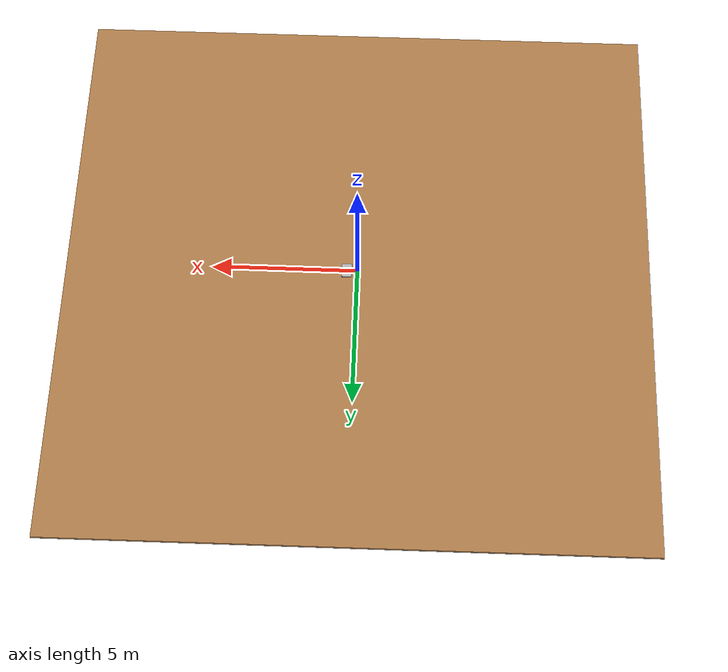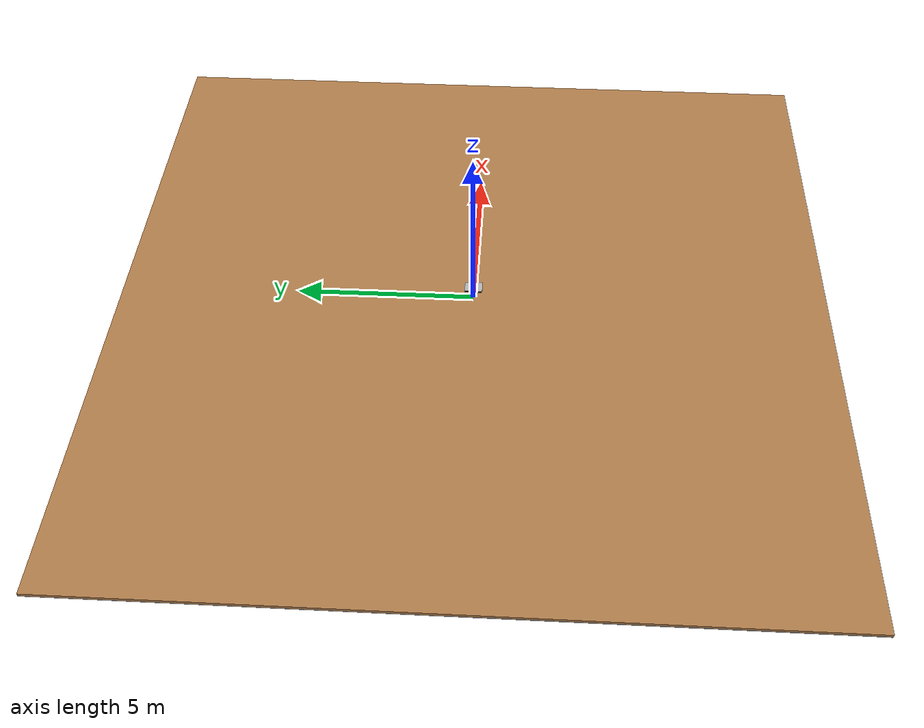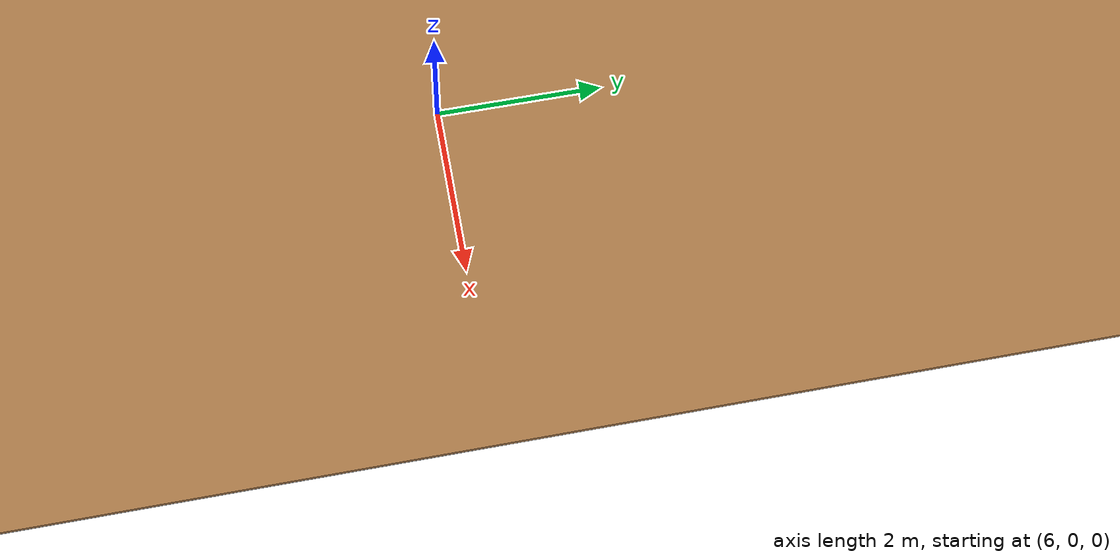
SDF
<sdf version="1.7">
 <world name="default">
  <light name="sun" type="directional">
   <pose>0 0 10 0 -0 0</pose>
   <diffuse>0.8 0.8 0.8 1</diffuse>
   <specular>0.2 0.2 0.2 1</specular>
   <attenuation>
    <range>1000</range>
    <constant>0.9</constant>
    <linear>0.01</linear>
    <quadratic>0.001</quadratic>
   </attenuation>
   <direction>-0.5 0.1 -0.9</direction>
   <spot><inner_angle>0</inner_angle><outer_angle>0</outer_angle><falloff>0</falloff></spot>
  </light>
  <gravity>0 0 -9.8</gravity>
  <magnetic_field>6e-06 2.3e-05 -4.2e-05</magnetic_field>
  <atmosphere type="adiabatic"/>
  <physics type="ode">
   <max_step_size>0.001</max_step_size>
   <real_time_factor>1</real_time_factor>
   <real_time_update_rate>1000</real_time_update_rate>
  </physics>
  <scene><ambient>0.4 0.4 0.4 1</ambient><background>0.7 0.7 0.7 1</background><shadows>1</shadows></scene>
  <spherical_coordinates>
   <surface_model>EARTH_WGS84</surface_model>
   <latitude_deg>0</latitude_deg>
   <longitude_deg>0</longitude_deg>
   <elevation>0</elevation>
   <heading_deg>0</heading_deg>
  </spherical_coordinates>
  <model name="EmptyWorldWood">
   <pose>0 0 -0.11 0 -0 0</pose>
   <link name="Floor_0">
    <collision name="Floor_0_Collision">
     <geometry><box><size>20.15 20.15 0.1</size></box></geometry>
     <pose>0 0 0.05 0 -0 0</pose>
    </collision>
    <visual name="Floor_0_Visual">
     <pose>0 0 0.05 0 -0 0</pose>
     <geometry><box><size>20.15 20.15 0.1</size></box></geometry>
     <material>
      <script><uri>file://media/materials/scripts/gazebo.material</uri><name>Gazebo/Wood</name></script>
      <ambient>1 1 1 1</ambient>
     </material>
     <meta><layer>1</layer></meta>
    </visual>
    <pose>0 0 0.01 0 -0 0</pose>
   </link>
   <link name="Wall_0">
    <collision name="Wall_0_Collision">
     <geometry><box><size>20.15 0.15 0.01</size></box></geometry>
     <pose>0 0 0.005 0 -0 0</pose>
    </collision>
    <visual name="Wall_0_Visual">
     <pose>0 0 0.005 0 -0 0</pose>
     <geometry><box><size>20.15 0.15 0.01</size></box></geometry>
     <material>
      <script><uri>file://media/materials/scripts/gazebo.material</uri><name>Gazebo/Grey</name></script>
      <ambient>1 1 1 1</ambient>
     </material>
     <meta><layer>0</layer></meta>
    </visual>
    <pose>0 10 0 0 -0 0</pose>
   </link>
   <link name="Wall_10">
    <collision name="Wall_10_Collision">
     <geometry><box><size>20.15 0.15 0.01</size></box></geometry>
     <pose>0 0 0.005 0 -0 0</pose>
    </collision>
    <visual name="Wall_10_Visual">
     <pose>0 0 0.005 0 -0 0</pose>
     <geometry><box><size>20.15 0.15 0.01</size></box></geometry>
     <material>
      <script><uri>file://media/materials/scripts/gazebo.material</uri><name>Gazebo/Grey</name></script>
      <ambient>1 1 1 1</ambient>
     </material>
     <meta><layer>1</layer></meta>
    </visual>
    <pose>0 -10 0.01 0 -0 0</pose>
   </link>
   <link name="Wall_11">
    <collision name="Wall_11_Collision">
     <geometry><box><size>20.15 0.15 0.01</size></box></geometry>
     <pose>0 0 0.005 0 -0 0</pose>
    </collision>
    <visual name="Wall_11_Visual">
     <pose>0 0 0.005 0 -0 0</pose>
     <geometry><box><size>20.15 0.15 0.01</size></box></geometry>
     <material>
      <script><uri>file://media/materials/scripts/gazebo.material</uri><name>Gazebo/Grey</name></script>
      <ambient>1 1 1 1</ambient>
     </material>
     <meta><layer>1</layer></meta>
    </visual>
    <pose>10 0 0.01 0 -0 1.5708</pose>
   </link>
   <link name="Wall_2">
    <collision name="Wall_2_Collision">
     <geometry><box><size>20.15 0.15 0.01</size></box></geometry>
     <pose>0 0 0.005 0 -0 0</pose>
    </collision>
    <visual name="Wall_2_Visual">
     <pose>0 0 0.005 0 -0 0</pose>
     <geometry><box><size>20.15 0.15 0.01</size></box></geometry>
     <material>
      <script><uri>file://media/materials/scripts/gazebo.material</uri><name>Gazebo/Grey</name></script>
      <ambient>1 1 1 1</ambient>
     </material>
     <meta><layer>0</layer></meta>
    </visual>
    <pose>-10 0 0 0 -0 -1.5708</pose>
   </link>
   <link name="Wall_4">
    <collision name="Wall_4_Collision">
     <geometry><box><size>20.15 0.15 0.01</size></box></geometry>
     <pose>0 0 0.005 0 -0 0</pose>
    </collision>
    <visual name="Wall_4_Visual">
     <pose>0 0 0.005 0 -0 0</pose>
     <geometry><box><size>20.15 0.15 0.01</size></box></geometry>
     <material>
      <script><uri>file://media/materials/scripts/gazebo.material</uri><name>Gazebo/Grey</name></script>
      <ambient>1 1 1 1</ambient>
     </material>
     <meta><layer>0</layer></meta>
    </visual>
    <pose>0 -10 0 0 -0 0</pose>
   </link>
   <link name="Wall_6">
    <collision name="Wall_6_Collision">
     <geometry><box><size>20.15 0.15 0.01</size></box></geometry>
     <pose>0 0 0.005 0 -0 0</pose>
    </collision>
    <visual name="Wall_6_Visual">
     <pose>0 0 0.005 0 -0 0</pose>
     <geometry><box><size>20.15 0.15 0.01</size></box></geometry>
     <material>
      <script><uri>file://media/materials/scripts/gazebo.material</uri><name>Gazebo/Grey</name></script>
      <ambient>1 1 1 1</ambient>
     </material>
     <meta><layer>0</layer></meta>
    </visual>
    <pose>10 0 0 0 -0 1.5708</pose>
   </link>
   <link name="Wall_8">
    <collision name="Wall_8_Collision">
     <geometry><box><size>20.15 0.15 0.01</size></box></geometry>
     <pose>0 0 0.005 0 -0 0</pose>
    </collision>
    <visual name="Wall_8_Visual">
     <pose>0 0 0.005 0 -0 0</pose>
     <geometry><box><size>20.15 0.15 0.01</size></box></geometry>
     <material>
      <script><uri>file://media/materials/scripts/gazebo.material</uri><name>Gazebo/Grey</name></script>
      <ambient>1 1 1 1</ambient>
     </material>
     <meta><layer>1</layer></meta>
    </visual>
    <pose>0 10 0.01 0 -0 0</pose>
   </link>
   <link name="Wall_9">
    <collision name="Wall_9_Collision">
     <geometry><box><size>20.15 0.15 0.01</size></box></geometry>
     <pose>0 0 0.005 0 -0 0</pose>
    </collision>
    <visual name="Wall_9_Visual">
     <pose>0 0 0.005 0 -0 0</pose>
     <geometry><box><size>20.15 0.15 0.01</size></box></geometry>
     <material>
      <script><uri>file://media/materials/scripts/gazebo.material</uri><name>Gazebo/Grey</name></script>
      <ambient>1 1 1 1</ambient>
     </material>
     <meta><layer>1</layer></meta>
    </visual>
    <pose>-10 0 0.01 0 -0 -1.5708</pose>
   </link>
   <static>1</static>
  </model>
  <model name="local_panel">
   <pose>0.375 0 0.025 0 -0 0</pose>
   <static>1</static>
   <link name="link">
    <collision name="collision"><geometry><box><size>0.35 0.5 0.05</size></box></geometry></collision>
    <visual name="visual">
     <geometry><mesh><uri>model://local_panel/meshes/local_panel.dae</uri></mesh></geometry>
    </visual>
   </link>
  </model>
 </world>
</sdf>
